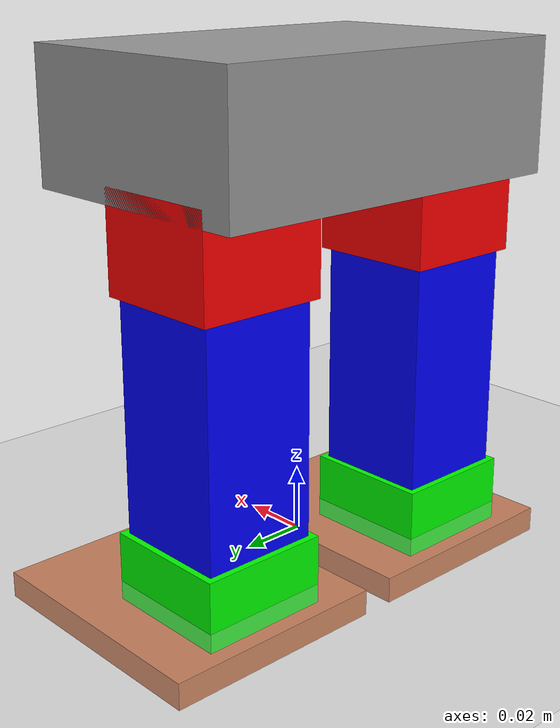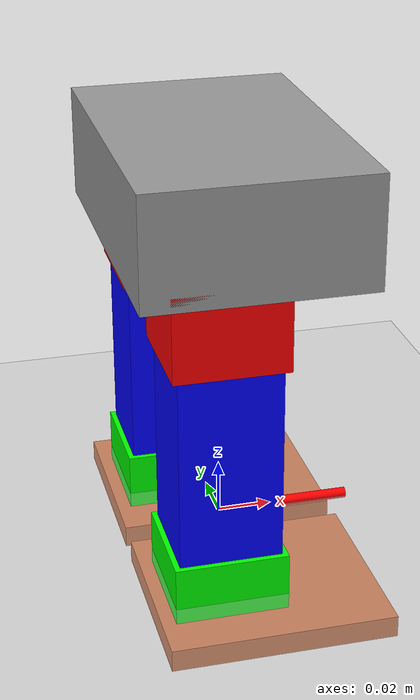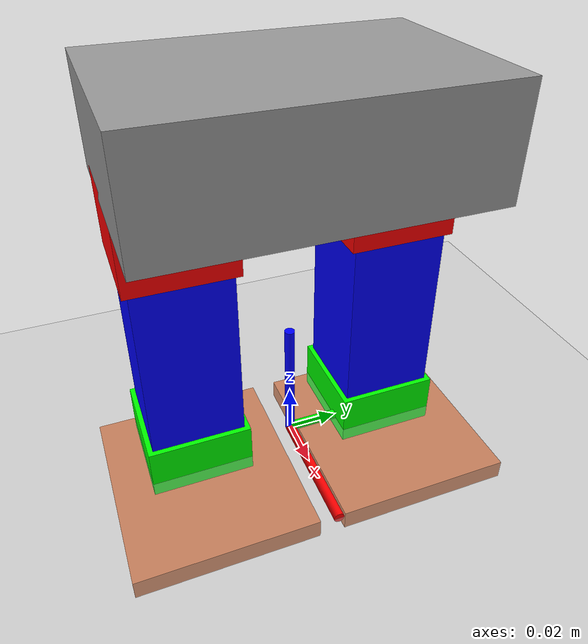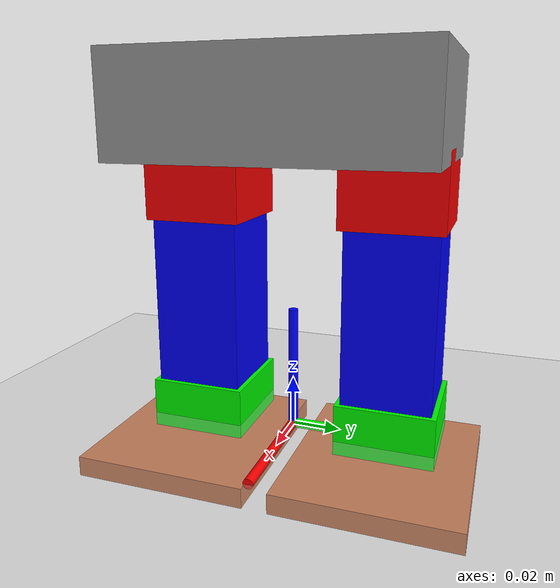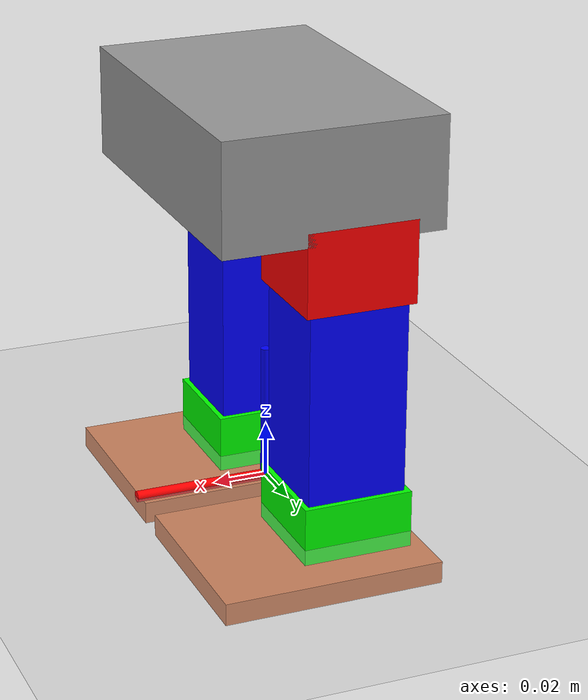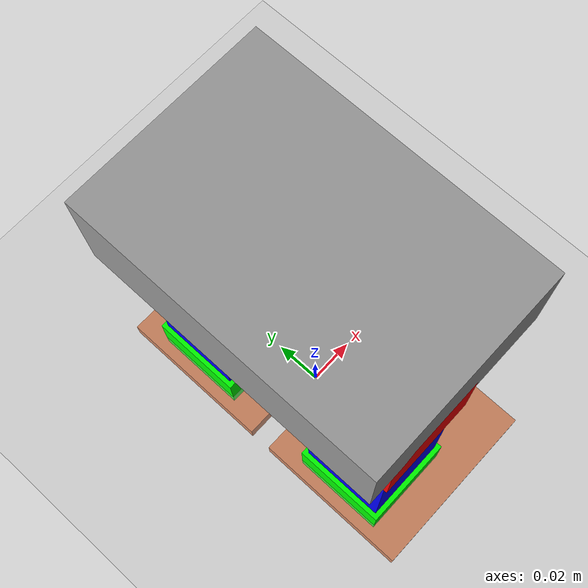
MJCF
<mujoco model="biped_geom">

    <compiler angle="radian" coordinate="local"/>
    <option gravity="0 0 -9.81" timestep="0.001"/>

    <visual>
        <global offwidth="1280" offheight="720"/>
    </visual>

    <default>
        <joint damping="10" armature="0.1"/>
        <geom friction="1.5 0.1 0.1" density="2000" solref="0.01 1"/>
    </default>

    <worldbody>

        <!-- FLOOR -->
        <geom name="ground"
              type="plane"
              size="2 2 0.1"
              pos="0 0 0"
              rgba="0.8 0.8 0.8 1"/>

        <!-- AXES -->
        <geom type="cylinder" fromto="0 0 0 0.05 0 0" size="0.002" rgba="1 0 0 1"/>
        <geom type="cylinder" fromto="0 0 0 0 0.05 0" size="0.002" rgba="0 1 0 1"/>
        <geom type="cylinder" fromto="0 0 0 0 0 0.05" size="0.002" rgba="0 0 1 1"/>

        <!-- BASE / TORSO (WIDER) -->
        <body name="base" pos="0 0 0.13">
            <freejoint/>
            <geom type="box" size="0.04 0.06 0.02" rgba="0.6 0.6 0.6 1"/>

            <!-- ===== LEFT LEG ===== -->
            <!-- HIP MOTOR -->
            <body name="left_hip_motor" pos="-0.01 0.04 -0.03">
                <geom type="box" size="0.02 0.02 0.015" rgba="1 0 0 1"/>
                <joint name="joint_1" type="hinge"
                       axis="0 1 0"
                       range="-0.5 0.5"/>

                <!-- LEG -->
                <body name="left_leg" pos="0 0 -0.05">
                    <geom type="box"
                          size="0.018 0.018 0.05"
                          rgba="0 0 1 1"/>

                    <!-- ANKLE MOTOR -->
                    <body name="left_ankle_motor" pos="0 0 -0.05">
                        <geom type="box" size="0.02 0.02 0.015" rgba="0 1 0 1"/>
                        <joint name="joint_2" type="hinge"
                               axis="0 1 0"
                               range="-0.5 0.5"/>

                        <!-- DUCK FOOT (long front, short back) -->
                        <body name="left_foot" pos="0.015 0 -0.01">
                            <geom type="box"
                                  size="0.04 0.035 0.004"
                                  friction="2 0.5 0.5"
                                  rgba="0.8 0.4 0.2 1"/>
                        </body>
                    </body>
                </body>
            </body>

            <!-- ===== RIGHT LEG ===== -->
            <!-- HIP MOTOR -->
            <body name="right_hip_motor" pos="-0.01 -0.04 -0.03">
                <geom type="box" size="0.02 0.02 0.015" rgba="1 0 0 1"/>
                <joint name="joint_3" type="hinge"
                       axis="0 1 0"
                       range="-0.5 0.5"/>

                <!-- LEG -->
                <body name="right_leg" pos="0 0 -0.05">
                    <geom type="box"
                          size="0.018 0.018 0.05"
                          rgba="0 0 1 1"/>

                    <!-- ANKLE MOTOR -->
                    <body name="right_ankle_motor" pos="0 0 -0.05">
                        <geom type="box" size="0.02 0.02 0.015" rgba="0 1 0 1"/>
                        <joint name="joint_4" type="hinge"
                               axis="0 1 0"
                               range="-0.5 0.5"/>

                        <!-- DUCK FOOT (long front, short back) -->
                        <body name="right_foot" pos="0.015 0 -0.01">
                            <geom type="box"
                                  size="0.04 0.035 0.004"
                                  friction="2 0.5 0.5"
                                  rgba="0.8 0.4 0.2 1"/>
                        </body>
                    </body>
                </body>
            </body>

        </body>
    </worldbody>

    <actuator>
        <position joint="joint_1" kp="200" kv="20"/>
        <position joint="joint_2" kp="200" kv="20"/>
        <position joint="joint_3" kp="200" kv="20"/>
        <position joint="joint_4" kp="200" kv="20"/>
    </actuator>

</mujoco>
